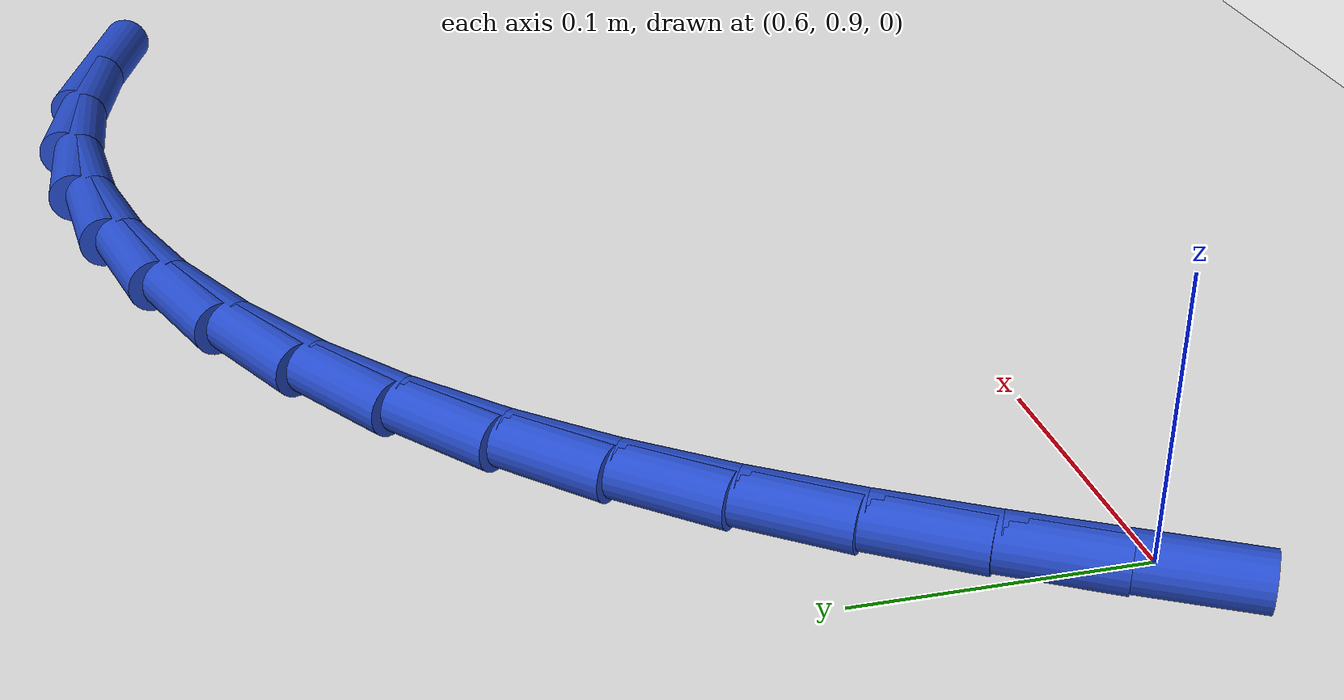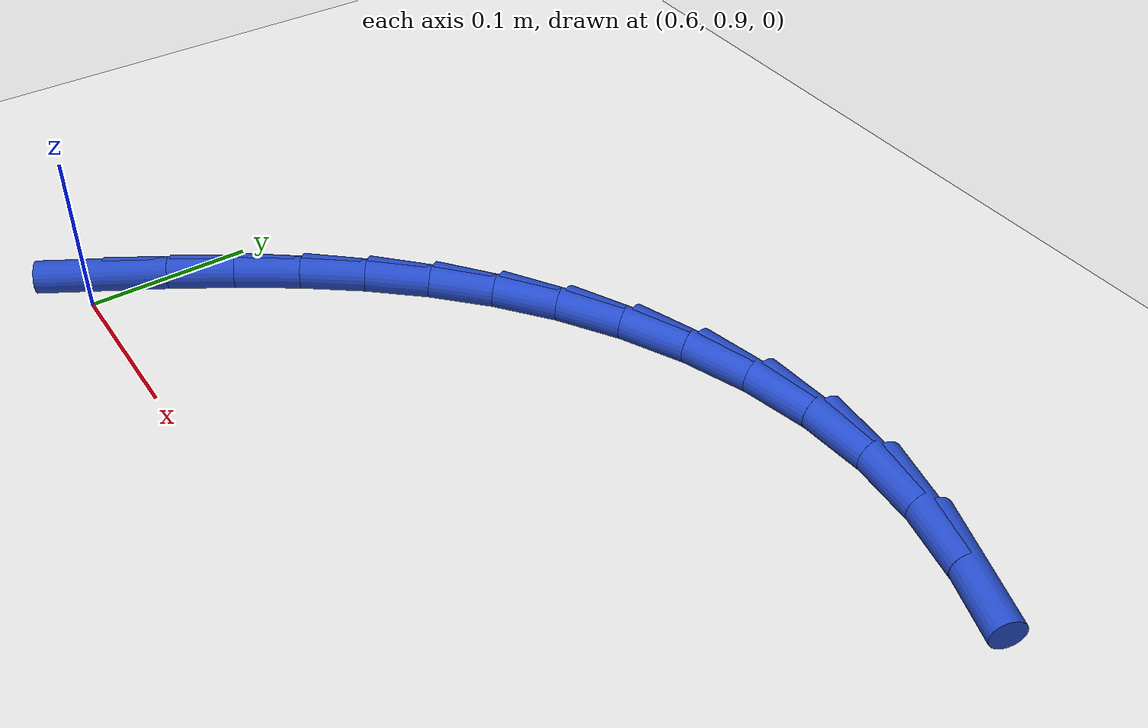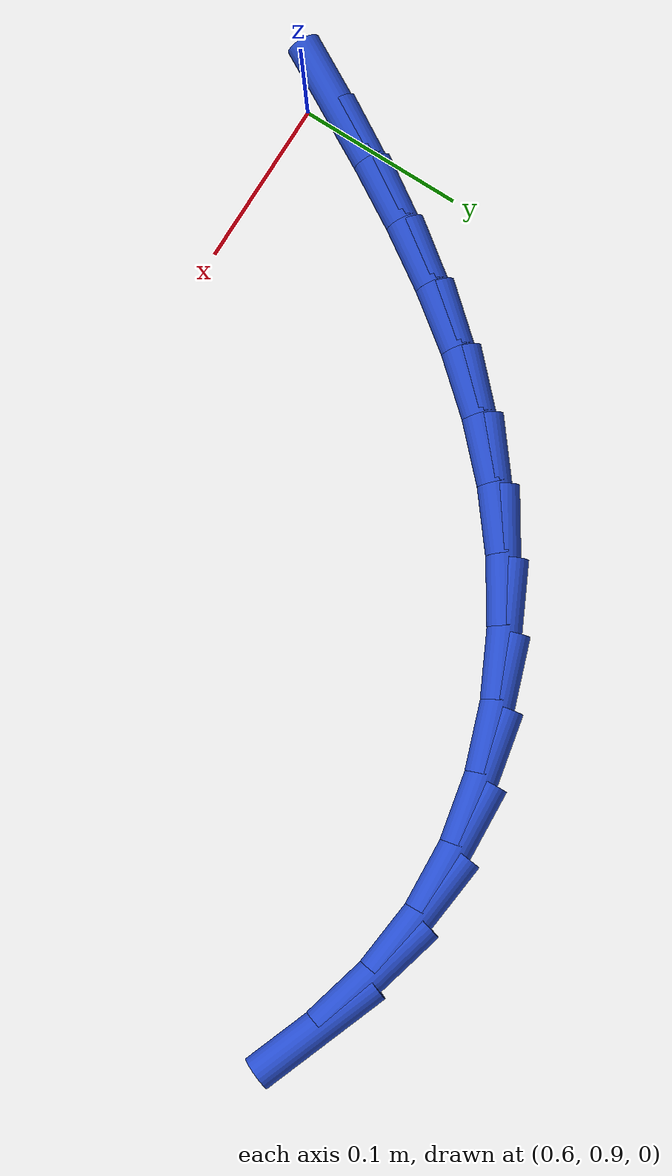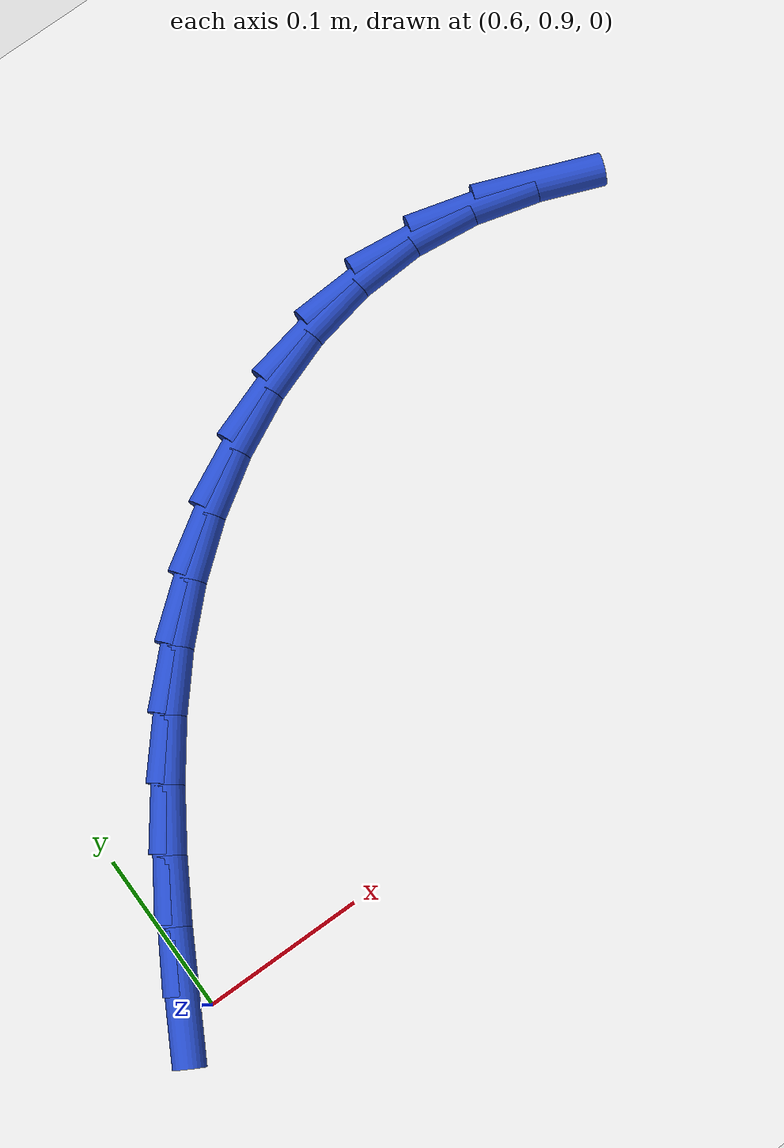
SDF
<sdf version="1.6">
 <world name="default">
  <model name="ground_plane">
   <static>1</static>
   <link name="link">
    <collision name="collision">
     <geometry><plane><normal>0 0 1</normal><size>100 100</size></plane></geometry>
     <surface><friction><ode><mu>100</mu><mu2>50</mu2></ode></friction></surface>
    </collision>
    <visual name="visual">
     <cast_shadows>0</cast_shadows>
     <geometry><plane><normal>0 0 1</normal><size>100 100</size></plane></geometry>
     <material>
      <script><uri>file://media/materials/scripts/gazebo.material</uri><name>Gazebo/WhiteGlow</name></script>
     </material>
    </visual>
   </link>
  </model>
  <model name="line">
   <link name="link_28">
    <pose>0.5886191103798518 0.9128737985353861 0.01 0 1.57 1.0634572495962729</pose>
    <collision name="collision">
     <geometry><cylinder><radius>0.01</radius><length>0.08</length></cylinder></geometry>
    </collision>
    <visual name="visual">
     <material>
      <script><name>Gazebo/Blue</name><uri>file://media/materials/scripts/gazebo.material</uri></script>
     </material>
     <geometry><cylinder><radius>0.01</radius><length>0.08</length></cylinder></geometry>
    </visual>
   </link>
   <link name="link_29">
    <pose>0.6084735302626171 0.9485915110118803 0.01 0 1.57 1.0333266390663947</pose>
    <collision name="collision">
     <geometry><cylinder><radius>0.01</radius><length>0.08</length></cylinder></geometry>
    </collision>
    <visual name="visual">
     <material>
      <script><name>Gazebo/Blue</name><uri>file://media/materials/scripts/gazebo.material</uri></script>
     </material>
     <geometry><cylinder><radius>0.01</radius><length>0.08</length></cylinder></geometry>
    </visual>
   </link>
   <link name="link_30">
    <pose>0.6292704500725986 0.9834859451178881 0.01 0 1.57 0.9892464566481233</pose>
    <collision name="collision">
     <geometry><cylinder><radius>0.01</radius><length>0.08</length></cylinder></geometry>
    </collision>
    <visual name="visual">
     <material>
      <script><name>Gazebo/Blue</name><uri>file://media/materials/scripts/gazebo.material</uri></script>
     </material>
     <geometry><cylinder><radius>0.01</radius><length>0.08</length></cylinder></geometry>
    </visual>
   </link>
   <link name="link_31">
    <pose>0.651438396985476 1.0172073083040385 0.01 0 1.57 0.9309100853064752</pose>
    <collision name="collision">
     <geometry><cylinder><radius>0.01</radius><length>0.08</length></cylinder></geometry>
    </collision>
    <visual name="visual">
     <material>
      <script><name>Gazebo/Blue</name><uri>file://media/materials/scripts/gazebo.material</uri></script>
     </material>
     <geometry><cylinder><radius>0.01</radius><length>0.08</length></cylinder></geometry>
    </visual>
   </link>
   <link name="link_32">
    <pose>0.6754058981769293 1.0494058080209618 0.01 0 1.57 0.8583427638865039</pose>
    <collision name="collision">
     <geometry><cylinder><radius>0.01</radius><length>0.08</length></cylinder></geometry>
    </collision>
    <visual name="visual">
     <material>
      <script><name>Gazebo/Blue</name><uri>file://media/materials/scripts/gazebo.material</uri></script>
     </material>
     <geometry><cylinder><radius>0.01</radius><length>0.08</length></cylinder></geometry>
    </visual>
   </link>
   <link name="link_33">
    <pose>0.7016014808226381 1.0797316517192865 0.01 0 1.57 0.772251902330791</pose>
    <collision name="collision">
     <geometry><cylinder><radius>0.01</radius><length>0.08</length></cylinder></geometry>
    </collision>
    <visual name="visual">
     <material>
      <script><name>Gazebo/Blue</name><uri>file://media/materials/scripts/gazebo.material</uri></script>
     </material>
     <geometry><cylinder><radius>0.01</radius><length>0.08</length></cylinder></geometry>
    </visual>
   </link>
   <link name="link_34">
    <pose>0.7304536720982817 1.107835046849642 0.01 0 1.57 0.674551458754761</pose>
    <collision name="collision">
     <geometry><cylinder><radius>0.01</radius><length>0.08</length></cylinder></geometry>
    </collision>
    <visual name="visual">
     <material>
      <script><name>Gazebo/Blue</name><uri>file://media/materials/scripts/gazebo.material</uri></script>
     </material>
     <geometry><cylinder><radius>0.01</radius><length>0.08</length></cylinder></geometry>
    </visual>
   </link>
   <link name="link_35">
    <pose>0.7623684716567026 1.133356970383253 0.01 0 1.57 0.5702922553740408</pose>
    <collision name="collision">
     <geometry><cylinder><radius>0.01</radius><length>0.08</length></cylinder></geometry>
    </collision>
    <visual name="visual">
     <material>
      <script><name>Gazebo/Blue</name><uri>file://media/materials/scripts/gazebo.material</uri></script>
     </material>
     <geometry><cylinder><radius>0.01</radius><length>0.08</length></cylinder></geometry>
    </visual>
   </link>
   <link name="link_36">
    <pose>0.797264849983971 1.155738842832072 0.01 0 1.57 0.4599378928380961</pose>
    <collision name="collision">
     <geometry><cylinder><radius>0.01</radius><length>0.08</length></cylinder></geometry>
    </collision>
    <visual name="visual">
     <material>
      <script><name>Gazebo/Blue</name><uri>file://media/materials/scripts/gazebo.material</uri></script>
     </material>
     <geometry><cylinder><radius>0.01</radius><length>0.08</length></cylinder></geometry>
    </visual>
   </link>
   <link name="link_37">
    <pose>0.8345914261257107 1.1742293618190092 0.01 0 1.57 0.3395098907493196</pose>
    <collision name="collision">
     <geometry><cylinder><radius>0.01</radius><length>0.08</length></cylinder></geometry>
    </collision>
    <visual name="visual">
     <material>
      <script><name>Gazebo/Blue</name><uri>file://media/materials/scripts/gazebo.material</uri></script>
     </material>
     <geometry><cylinder><radius>0.01</radius><length>0.08</length></cylinder></geometry>
    </visual>
   </link>
   <link name="link_38">
    <pose>0.8737776284195189 1.1880693617218014 0.01 0 1.57 0.20534732167251074</pose>
    <collision name="collision">
     <geometry><cylinder><radius>0.01</radius><length>0.08</length></cylinder></geometry>
    </collision>
    <visual name="visual">
     <material>
      <script><name>Gazebo/Blue</name><uri>file://media/materials/scripts/gazebo.material</uri></script>
     </material>
     <geometry><cylinder><radius>0.01</radius><length>0.08</length></cylinder></geometry>
    </visual>
   </link>
   <link name="link_39">
    <pose>0.9142528852029919 1.196499676918186 0.01 0 1.57 0.05484321418956745</pose>
    <collision name="collision">
     <geometry><cylinder><radius>0.01</radius><length>0.08</length></cylinder></geometry>
    </collision>
    <visual name="visual">
     <material>
      <script><name>Gazebo/Blue</name><uri>file://media/materials/scripts/gazebo.material</uri></script>
     </material>
     <geometry><cylinder><radius>0.01</radius><length>0.08</length></cylinder></geometry>
    </visual>
   </link>
   <link name="link_40">
    <pose>0.9554466248137254 1.198761141785898 0.01 0 1.57 -0.11114399322380754</pose>
    <collision name="collision">
     <geometry><cylinder><radius>0.01</radius><length>0.08</length></cylinder></geometry>
    </collision>
    <visual name="visual">
     <material>
      <script><name>Gazebo/Blue</name><uri>file://media/materials/scripts/gazebo.material</uri></script>
     </material>
     <geometry><cylinder><radius>0.01</radius><length>0.08</length></cylinder></geometry>
    </visual>
   </link>
   <link name="link_41">
    <pose>0.9967983997663799 1.194146121627641 0.01 0 1.57 -0.26191874773489854</pose>
    <collision name="collision">
     <geometry><cylinder><radius>0.01</radius><length>0.08</length></cylinder></geometry>
    </collision>
    <visual name="visual">
     <material>
      <script><name>Gazebo/Blue</name><uri>file://media/materials/scripts/gazebo.material</uri></script>
     </material>
     <geometry><cylinder><radius>0.01</radius><length>0.08</length></cylinder></geometry>
    </visual>
   </link>
   <link name="link_42">
    <pose>1.037975750703218 1.1831074157273853 0.01 0 1.57 -0.37001681119999813</pose>
    <collision name="collision">
     <geometry><cylinder><radius>0.01</radius><length>0.08</length></cylinder></geometry>
    </collision>
    <visual name="visual">
     <material>
      <script><name>Gazebo/Blue</name><uri>file://media/materials/scripts/gazebo.material</uri></script>
     </material>
     <geometry><cylinder><radius>0.01</radius><length>0.08</length></cylinder></geometry>
    </visual>
   </link>
  </model>
 </world>
</sdf>
